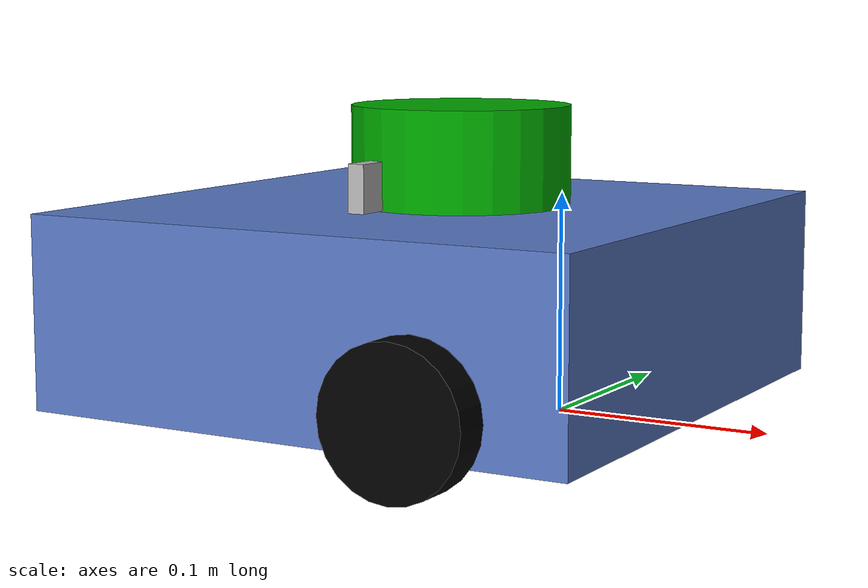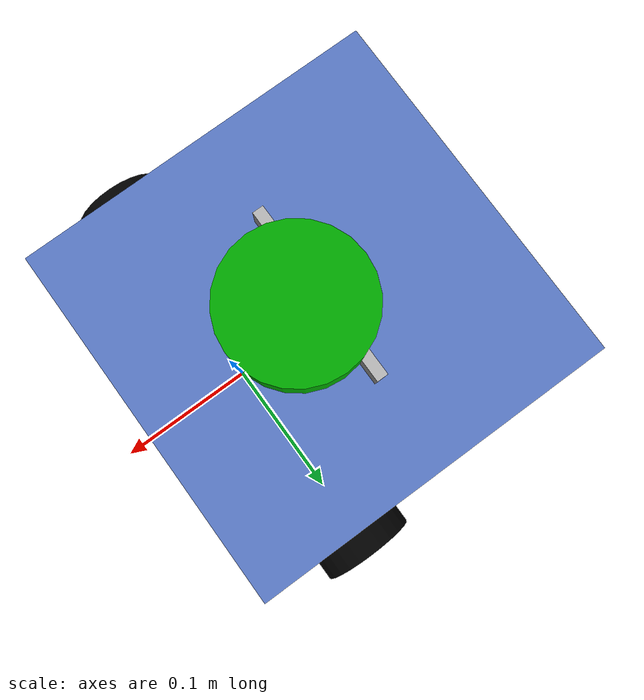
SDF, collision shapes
<?xml version='1.0'?>
<sdf version='1.7'>
  <model name='robot_lidar_plaski'>
    <link name='base'>
      <inertial>
        <pose>-0.064 0 0.048 0 -0 0</pose>
        <inertia>
          <ixx>0.001</ixx>
          <ixy>0</ixy>
          <ixz>0</ixz>
          <iyy>0.001</iyy>
          <iyz>0</iyz>
          <izz>0.001</izz>
        </inertia>
        <mass>1</mass>
      </inertial>
      <self_collide>0</self_collide>
      <enable_wind>0</enable_wind>
      <kinematic>0</kinematic>
      <pose>0 0 0 0 -0 0</pose>
      <gravity>1</gravity>
      <visual name='ModelPreview_8::base::visual_1'>
        <pose>-0.177 0.064 -0.004 0 -0 0</pose>
        <geometry>
          <sphere>
            <radius>0.00499999</radius>
          </sphere>
        </geometry>
        <material>
          <shader type='pixel'>
            <normal_map>__default__</normal_map>
          </shader>
          <script>
            <name>ModelPreview_5::base::base_visual_MATERIAL_</name>
            <uri>__default__</uri>
          </script>
          <ambient>0.353 0.478 0.776 1</ambient>
          <diffuse>0.353 0.478 0.776 1</diffuse>
          <specular>0.353 0.478 0.776 1</specular>
          <emissive>0.353 0.478 0.776 1</emissive>
        </material>
        <transparency>0</transparency>
        <cast_shadows>1</cast_shadows>
      </visual>
      <visual name='base_visual'>
        <pose>-0.064 0 0.048 0 -0 0</pose>
        <geometry>
          <box>
            <size>0.265 0.265 0.089</size>
          </box>
        </geometry>
        <material>
          <shader type='pixel'>
            <normal_map>__default__</normal_map>
          </shader>
          <script>
            <name>ModelPreview_5::base::base_visual_MATERIAL_</name>
            <uri>__default__</uri>
          </script>
          <ambient>0.353 0.478 0.776 1</ambient>
          <diffuse>0.353 0.478 0.776 1</diffuse>
          <specular>0.353 0.478 0.776 1</specular>
          <emissive>0.353 0.478 0.776 1</emissive>
        </material>
        <transparency>0</transparency>
        <cast_shadows>1</cast_shadows>
      </visual>
      <visual name='ModelPreview_8::base::visual_2'>
        <pose>-0.177 -0.064 -0.004 0 -0 0</pose>
        <geometry>
          <sphere>
            <radius>0.00499999</radius>
          </sphere>
        </geometry>
        <material>
          <shader type='pixel'>
            <normal_map>__default__</normal_map>
          </shader>
          <script>
            <name>ModelPreview_5::base::base_visual_MATERIAL_</name>
            <uri>__default__</uri>
          </script>
          <ambient>0.353 0.478 0.776 1</ambient>
          <diffuse>0.353 0.478 0.776 1</diffuse>
          <specular>0.353 0.478 0.776 1</specular>
          <emissive>0.353 0.478 0.776 1</emissive>
        </material>
        <transparency>0</transparency>
        <cast_shadows>1</cast_shadows>
      </visual>
      <collision name='base_collision'>
        <laser_retro>0</laser_retro>
        <max_contacts>10</max_contacts>
        <pose>-0.064 0 0.048 0 -0 0</pose>
        <geometry>
          <box>
            <size>0.265 0.265 0.089</size>
          </box>
        </geometry>
        <surface>
          <friction>
            <ode>
              <mu>1</mu>
              <mu2>1</mu2>
              <fdir1>0 0 0</fdir1>
              <slip1>0</slip1>
              <slip2>0</slip2>
            </ode>
            <torsional>
              <coefficient>1</coefficient>
              <patch_radius>0</patch_radius>
              <surface_radius>0</surface_radius>
              <use_patch_radius>1</use_patch_radius>
              <ode>
                <slip>0</slip>
              </ode>
            </torsional>
          </friction>
          <bounce>
            <restitution_coefficient>0</restitution_coefficient>
            <threshold>1e+06</threshold>
          </bounce>
          <contact>
            <collide_without_contact>0</collide_without_contact>
            <collide_without_contact_bitmask>1</collide_without_contact_bitmask>
            <collide_bitmask>1</collide_bitmask>
            <ode>
              <soft_cfm>0</soft_cfm>
              <soft_erp>0.2</soft_erp>
              <kp>1e+13</kp>
              <kd>1</kd>
              <max_vel>0.01</max_vel>
              <min_depth>0</min_depth>
            </ode>
            <bullet>
              <split_impulse>1</split_impulse>
              <split_impulse_penetration_threshold>-0.01</split_impulse_penetration_threshold>
              <soft_cfm>0</soft_cfm>
              <soft_erp>0.2</soft_erp>
              <kp>1e+13</kp>
              <kd>1</kd>
            </bullet>
          </contact>
        </surface>
      </collision>
      <collision name='right_caster_collision'>
        <laser_retro>0</laser_retro>
        <max_contacts>10</max_contacts>
        <pose>-0.177 -0.064 -0.004 0 -0 0</pose>
        <geometry>
          <sphere>
            <radius>0.005</radius>
          </sphere>
        </geometry>
        <surface>
          <friction>
            <ode>
              <mu>100000</mu>
              <mu2>100000</mu2>
              <fdir1>0 0 0</fdir1>
              <slip1>0</slip1>
              <slip2>0</slip2>
            </ode>
            <torsional>
              <coefficient>1</coefficient>
              <patch_radius>0</patch_radius>
              <surface_radius>0</surface_radius>
              <use_patch_radius>1</use_patch_radius>
              <ode>
                <slip>0</slip>
              </ode>
            </torsional>
          </friction>
          <bounce>
            <restitution_coefficient>0</restitution_coefficient>
            <threshold>1e+06</threshold>
          </bounce>
          <contact>
            <collide_without_contact>0</collide_without_contact>
            <collide_without_contact_bitmask>1</collide_without_contact_bitmask>
            <collide_bitmask>1</collide_bitmask>
            <ode>
              <soft_cfm>0</soft_cfm>
              <soft_erp>0.2</soft_erp>
              <kp>1e+13</kp>
              <kd>1</kd>
              <max_vel>0.01</max_vel>
              <min_depth>0</min_depth>
            </ode>
            <bullet>
              <split_impulse>1</split_impulse>
              <split_impulse_penetration_threshold>-0.01</split_impulse_penetration_threshold>
              <soft_cfm>0</soft_cfm>
              <soft_erp>0.2</soft_erp>
              <kp>1e+13</kp>
              <kd>1</kd>
            </bullet>
          </contact>
        </surface>
      </collision>
      <collision name='left_caster_collision'>
        <laser_retro>0</laser_retro>
        <max_contacts>10</max_contacts>
        <pose>-0.177 0.064 -0.004 0 -0 0</pose>
        <geometry>
          <sphere>
            <radius>0.005</radius>
          </sphere>
        </geometry>
        <surface>
          <friction>
            <ode>
              <mu>100000</mu>
              <mu2>100000</mu2>
              <fdir1>0 0 0</fdir1>
              <slip1>0</slip1>
              <slip2>0</slip2>
            </ode>
            <torsional>
              <coefficient>1</coefficient>
              <patch_radius>0</patch_radius>
              <surface_radius>0</surface_radius>
              <use_patch_radius>1</use_patch_radius>
              <ode>
                <slip>0</slip>
              </ode>
            </torsional>
          </friction>
          <bounce>
            <restitution_coefficient>0</restitution_coefficient>
            <threshold>1e+06</threshold>
          </bounce>
          <contact>
            <collide_without_contact>0</collide_without_contact>
            <collide_without_contact_bitmask>1</collide_without_contact_bitmask>
            <collide_bitmask>1</collide_bitmask>
            <ode>
              <soft_cfm>0</soft_cfm>
              <soft_erp>0.2</soft_erp>
              <kp>1e+13</kp>
              <kd>1</kd>
              <max_vel>0.01</max_vel>
              <min_depth>0</min_depth>
            </ode>
            <bullet>
              <split_impulse>1</split_impulse>
              <split_impulse_penetration_threshold>-0.01</split_impulse_penetration_threshold>
              <soft_cfm>0</soft_cfm>
              <soft_erp>0.2</soft_erp>
              <kp>1e+13</kp>
              <kd>1</kd>
            </bullet>
          </contact>
        </surface>
      </collision>
    </link>
    <link name='image'>
      <inertial>
        <pose>-0.069 0 0.104 0 -0 0</pose>
        <inertia>
          <ixx>0.001</ixx>
          <ixy>0</ixy>
          <ixz>0</ixz>
          <iyy>0.001</iyy>
          <iyz>0</iyz>
          <izz>0.001</izz>
        </inertia>
        <mass>0.035</mass>
      </inertial>
      <sensor name='raspberry_pi_cam' type='camera'>
        <pose>0.076 0 0.094 0 -0 0</pose>
        <always_on>1</always_on>
        <visualize>0</visualize>
        <update_rate>30</update_rate>
        <camera>
          <horizontal_fov>1.0856</horizontal_fov>
          <image>
            <width>640</width>
            <height>480</height>
            <format>R8G8B8</format>
          </image>
          <depth_camera>
            <output>depths</output>
          </depth_camera>
          <clip>
            <near>0.02</near>
            <far>300</far>
          </clip>
        </camera>
      </sensor>
      <self_collide>0</self_collide>
      <enable_wind>0</enable_wind>
      <kinematic>0</kinematic>
      <pose>0 0 0 0 -0 0</pose>
      <collision name='image_collision'>
        <laser_retro>0</laser_retro>
        <max_contacts>10</max_contacts>
        <pose>-0.069 0 0.104 0 -0 0</pose>
        <geometry>
          <box>
            <size>0.008 0.13 0.022</size>
          </box>
        </geometry>
        <surface>
          <friction>
            <ode>
              <mu>1</mu>
              <mu2>1</mu2>
              <fdir1>0 0 0</fdir1>
              <slip1>0</slip1>
              <slip2>0</slip2>
            </ode>
            <torsional>
              <coefficient>1</coefficient>
              <patch_radius>0</patch_radius>
              <surface_radius>0</surface_radius>
              <use_patch_radius>1</use_patch_radius>
              <ode>
                <slip>0</slip>
              </ode>
            </torsional>
          </friction>
          <bounce>
            <restitution_coefficient>0</restitution_coefficient>
            <threshold>1e+06</threshold>
          </bounce>
          <contact>
            <collide_without_contact>0</collide_without_contact>
            <collide_without_contact_bitmask>1</collide_without_contact_bitmask>
            <collide_bitmask>1</collide_bitmask>
            <ode>
              <soft_cfm>0</soft_cfm>
              <soft_erp>0.2</soft_erp>
              <kp>1e+13</kp>
              <kd>1</kd>
              <max_vel>0.01</max_vel>
              <min_depth>0</min_depth>
            </ode>
            <bullet>
              <split_impulse>1</split_impulse>
              <split_impulse_penetration_threshold>-0.01</split_impulse_penetration_threshold>
              <soft_cfm>0</soft_cfm>
              <soft_erp>0.2</soft_erp>
              <kp>1e+13</kp>
              <kd>1</kd>
            </bullet>
          </contact>
        </surface>
      </collision>
    </link>
    <link name='left_wheel'>
      <inertial>
        <pose>0 0.144 0.023 -1.57 0 0</pose>
        <inertia>
          <ixx>0.001</ixx>
          <ixy>0</ixy>
          <ixz>0</ixz>
          <iyy>0.001</iyy>
          <iyz>0</iyz>
          <izz>0.001</izz>
        </inertia>
        <mass>0.1</mass>
      </inertial>
      <self_collide>0</self_collide>
      <enable_wind>0</enable_wind>
      <kinematic>0</kinematic>
      <pose>0 0 0 0 -0 0</pose>
      <gravity>1</gravity>
      <visual name='left_wheel_visual'>
        <pose>0 0.144 0.023 0 -0 0</pose>
        <geometry>
          <mesh>
            <uri>../opony/left_tire.dae</uri>
            <scale>0.001 0.001 0.001</scale>
          </mesh>
        </geometry>
        <material>
          <shader type='pixel'>
            <normal_map>__default__</normal_map>
          </shader>
          <script>
            <name>ModelPreview_1::left_wheel::left_wheel_visual_MATERIAL_ModelPreview_1::left_wheel::left_wheel_visual_MATERIAL_ModelPreview_1::left_wheel::left_wheel_visual_MATERIAL_ModelPreview_7::left_wheel::left_wheel_visual_MATERIAL_ModelPreview_5::left_wheel::left_wheel_visual_MATERIAL_</name>
            <uri>__default__</uri>
          </script>
          <ambient>0 0 0 1</ambient>
          <diffuse>0 0 0 1</diffuse>
          <specular>0 0 0 1</specular>
          <emissive>0 0 0 1</emissive>
        </material>
        <transparency>0</transparency>
        <cast_shadows>1</cast_shadows>
      </visual>
      <collision name='left_wheel_collision'>
        <laser_retro>0</laser_retro>
        <max_contacts>10</max_contacts>
        <pose>0 0.144 0.023 -1.57 0 0</pose>
        <geometry>
          <cylinder>
            <radius>0.033</radius>
            <length>0.018</length>
          </cylinder>
        </geometry>
        <surface>
          <friction>
            <ode>
              <mu>100000</mu>
              <mu2>100000</mu2>
              <fdir1>0 0 0</fdir1>
              <slip1>0</slip1>
              <slip2>0</slip2>
            </ode>
            <torsional>
              <coefficient>1</coefficient>
              <patch_radius>0</patch_radius>
              <surface_radius>0</surface_radius>
              <use_patch_radius>1</use_patch_radius>
              <ode>
                <slip>0</slip>
              </ode>
            </torsional>
          </friction>
          <bounce>
            <restitution_coefficient>0</restitution_coefficient>
            <threshold>1e+06</threshold>
          </bounce>
          <contact>
            <collide_without_contact>0</collide_without_contact>
            <collide_without_contact_bitmask>1</collide_without_contact_bitmask>
            <collide_bitmask>1</collide_bitmask>
            <ode>
              <soft_cfm>0</soft_cfm>
              <soft_erp>0.2</soft_erp>
              <kp>1e+13</kp>
              <kd>1</kd>
              <max_vel>0.01</max_vel>
              <min_depth>0</min_depth>
            </ode>
            <bullet>
              <split_impulse>1</split_impulse>
              <split_impulse_penetration_threshold>-0.01</split_impulse_penetration_threshold>
              <soft_cfm>0</soft_cfm>
              <soft_erp>0.2</soft_erp>
              <kp>1e+13</kp>
              <kd>1</kd>
            </bullet>
          </contact>
        </surface>
      </collision>
    </link>
    <link name='lidar'>
      <inertial>
        <pose>-0.052 0 0.111 0 -0 0</pose>
        <inertia>
          <ixx>0.001</ixx>
          <ixy>0</ixy>
          <ixz>0</ixz>
          <iyy>0.001</iyy>
          <iyz>0</iyz>
          <izz>0.001</izz>
        </inertia>
        <mass>0.125</mass>
      </inertial>
      <sensor name='hls_lfcd_lds' type='ray'>
        <always_on>1</always_on>
        <visualize>0</visualize>
        <pose>-0.064 0 0.121 0 -0 0</pose>
        <update_rate>1800</update_rate>
        <ray>
          <scan>
            <horizontal>
              <samples>360</samples>
              <resolution>1</resolution>
              <min_angle>0</min_angle>
              <max_angle>6.28</max_angle>
            </horizontal>
            <vertical>
              <samples>1</samples>
              <min_angle>0</min_angle>
              <max_angle>0</max_angle>
            </vertical>
          </scan>
          <range>
            <min>0.12</min>
            <max>3.5</max>
            <resolution>0.015</resolution>
          </range>
          <noise>
            <type>gaussian</type>
            <mean>0</mean>
            <stddev>0.01</stddev>
          </noise>
        </ray>
      </sensor>
      <self_collide>0</self_collide>
      <enable_wind>0</enable_wind>
      <kinematic>0</kinematic>
      <pose>0 0 0 0 -0 0</pose>
      <gravity>1</gravity>
      <visual name='lidar_sensor_visual'>
        <pose>-0.052 0 0.111 0 -0 0</pose>
        <geometry>
          <cylinder>
            <radius>0.0508</radius>
            <length>0.055</length>
          </cylinder>
        </geometry>
        <material>
          <shader type='pixel'>
            <normal_map>__default__</normal_map>
          </shader>
          <script>
            <name>ModelPreview_5::lidar::lidar_sensor_visual_MATERIAL_</name>
            <uri>__default__</uri>
          </script>
          <ambient>0 0.667 0 1</ambient>
          <diffuse>0 0.667 0 1</diffuse>
          <specular>0.078 0.529 0.318 1</specular>
          <emissive>0 1 0.498 1</emissive>
        </material>
        <transparency>0</transparency>
        <cast_shadows>1</cast_shadows>
      </visual>
      <collision name='lidar_sensor_collision'>
        <laser_retro>0</laser_retro>
        <max_contacts>10</max_contacts>
        <pose>-0.052 0 0.111 0 -0 0</pose>
        <geometry>
          <cylinder>
            <radius>0.0508</radius>
            <length>0.055</length>
          </cylinder>
        </geometry>
        <surface>
          <friction>
            <ode>
              <mu>1</mu>
              <mu2>1</mu2>
              <fdir1>0 0 0</fdir1>
              <slip1>0</slip1>
              <slip2>0</slip2>
            </ode>
            <torsional>
              <coefficient>1</coefficient>
              <patch_radius>0</patch_radius>
              <surface_radius>0</surface_radius>
              <use_patch_radius>1</use_patch_radius>
              <ode>
                <slip>0</slip>
              </ode>
            </torsional>
          </friction>
          <bounce>
            <restitution_coefficient>0</restitution_coefficient>
            <threshold>1e+06</threshold>
          </bounce>
          <contact>
            <collide_without_contact>0</collide_without_contact>
            <collide_without_contact_bitmask>1</collide_without_contact_bitmask>
            <collide_bitmask>1</collide_bitmask>
            <ode>
              <soft_cfm>0</soft_cfm>
              <soft_erp>0.2</soft_erp>
              <kp>1e+13</kp>
              <kd>1</kd>
              <max_vel>0.01</max_vel>
              <min_depth>0</min_depth>
            </ode>
            <bullet>
              <split_impulse>1</split_impulse>
              <split_impulse_penetration_threshold>-0.01</split_impulse_penetration_threshold>
              <soft_cfm>0</soft_cfm>
              <soft_erp>0.2</soft_erp>
              <kp>1e+13</kp>
              <kd>1</kd>
            </bullet>
          </contact>
        </surface>
      </collision>
    </link>
    <link name='right_wheel'>
      <inertial>
        <pose>0 -0.144 0.023 -1.57 0 0</pose>
        <inertia>
          <ixx>0.001</ixx>
          <ixy>0</ixy>
          <ixz>0</ixz>
          <iyy>0.001</iyy>
          <iyz>0</iyz>
          <izz>0.001</izz>
        </inertia>
        <mass>0.1</mass>
      </inertial>
      <self_collide>0</self_collide>
      <enable_wind>0</enable_wind>
      <kinematic>0</kinematic>
      <pose>0 0 0 0 -0 0</pose>
      <gravity>1</gravity>
      <visual name='right_wheel_visual'>
        <pose>0 -0.144 0.023 0 -0 0</pose>
        <geometry>
          <mesh>
            <uri>../opony/right_tire.dae</uri>
            <scale>0.001 0.001 0.001</scale>
          </mesh>
        </geometry>
        <material>
          <shader type='pixel'>
            <normal_map>__default__</normal_map>
          </shader>
          <script>
            <name>ModelPreview_1::right_wheel::right_wheel_visual_MATERIAL_ModelPreview_1::right_wheel::right_wheel_visual_MATERIAL_ModelPreview_1::right_wheel::right_wheel_visual_MATERIAL_ModelPreview_7::right_wheel::right_wheel_visual_MATERIAL_ModelPreview_5::right_wheel::right_wheel_visual_MATERIAL_</name>
            <uri>__default__</uri>
          </script>
          <ambient>0 0 0 1</ambient>
          <diffuse>0 0 0 1</diffuse>
          <specular>0 0 0 1</specular>
          <emissive>0 0 0 1</emissive>
        </material>
        <transparency>0</transparency>
        <cast_shadows>1</cast_shadows>
      </visual>
      <collision name='right_wheel_collision'>
        <laser_retro>0</laser_retro>
        <max_contacts>10</max_contacts>
        <pose>0 -0.144 0.023 -1.57 0 0</pose>
        <geometry>
          <cylinder>
            <radius>0.033</radius>
            <length>0.018</length>
          </cylinder>
        </geometry>
        <surface>
          <friction>
            <ode>
              <mu>100000</mu>
              <mu2>100000</mu2>
              <fdir1>0 0 0</fdir1>
              <slip1>0</slip1>
              <slip2>0</slip2>
            </ode>
            <torsional>
              <coefficient>1</coefficient>
              <patch_radius>0</patch_radius>
              <surface_radius>0</surface_radius>
              <use_patch_radius>1</use_patch_radius>
              <ode>
                <slip>0</slip>
              </ode>
            </torsional>
          </friction>
          <bounce>
            <restitution_coefficient>0</restitution_coefficient>
            <threshold>1e+06</threshold>
          </bounce>
          <contact>
            <collide_without_contact>0</collide_without_contact>
            <collide_without_contact_bitmask>1</collide_without_contact_bitmask>
            <collide_bitmask>1</collide_bitmask>
            <ode>
              <soft_cfm>0</soft_cfm>
              <soft_erp>0.2</soft_erp>
              <kp>1e+13</kp>
              <kd>1</kd>
              <max_vel>0.01</max_vel>
              <min_depth>0</min_depth>
            </ode>
            <bullet>
              <split_impulse>1</split_impulse>
              <split_impulse_penetration_threshold>-0.01</split_impulse_penetration_threshold>
              <soft_cfm>0</soft_cfm>
              <soft_erp>0.2</soft_erp>
              <kp>1e+13</kp>
              <kd>1</kd>
            </bullet>
          </contact>
        </surface>
      </collision>
    </link>
    <joint name='image_joint' type='fixed'>
      <parent>base</parent>
      <child>image</child>
      <pose>0.064 -0.065 0.094 0 -0 0</pose>
      <physics>
        <ode>
          <limit>
            <cfm>0</cfm>
            <erp>0.2</erp>
          </limit>
          <suspension>
            <cfm>0</cfm>
            <erp>0.2</erp>
          </suspension>
        </ode>
      </physics>
    </joint>
    <joint name='left_wheel_joint' type='revolute'>
      <parent>base</parent>
      <child>left_wheel</child>
      <pose>0 0.144 0.023 -1.57 0 0</pose>
      <axis>
        <xyz>0 1 0</xyz>
        <limit>
          <lower>-1e+16</lower>
          <upper>1e+16</upper>
          <effort>-1</effort>
          <velocity>-1</velocity>
        </limit>
        <dynamics>
          <spring_reference>0</spring_reference>
          <spring_stiffness>0</spring_stiffness>
          <damping>0</damping>
          <friction>0</friction>
        </dynamics>
      </axis>
      <physics>
        <ode>
          <limit>
            <cfm>0</cfm>
            <erp>0.2</erp>
          </limit>
          <suspension>
            <cfm>0</cfm>
            <erp>0.2</erp>
          </suspension>
        </ode>
      </physics>
    </joint>
    <joint name='lidar_joint' type='fixed'>
      <parent>base</parent>
      <child>lidar</child>
      <pose>-0.064 0 0.121 0 -0 0</pose>
      <physics>
        <ode>
          <limit>
            <cfm>0</cfm>
            <erp>0.2</erp>
          </limit>
          <suspension>
            <cfm>0</cfm>
            <erp>0.2</erp>
          </suspension>
        </ode>
      </physics>
    </joint>
    <joint name='right_wheel_joint' type='revolute'>
      <parent>base</parent>
      <child>right_wheel</child>
      <pose>0 -0.144 0.023 -1.57 0 0</pose>
      <axis>
        <xyz>0 1 0</xyz>
        <limit>
          <lower>-1e+16</lower>
          <upper>1e+16</upper>
          <effort>-1</effort>
          <velocity>-1</velocity>
        </limit>
        <dynamics>
          <spring_reference>0</spring_reference>
          <spring_stiffness>0</spring_stiffness>
          <damping>0</damping>
          <friction>0</friction>
        </dynamics>
      </axis>
      <physics>
        <ode>
          <limit>
            <cfm>0</cfm>
            <erp>0.2</erp>
          </limit>
          <suspension>
            <cfm>0</cfm>
            <erp>0.2</erp>
          </suspension>
        </ode>
      </physics>
    </joint>
    <static>0</static>
    <allow_auto_disable>1</allow_auto_disable>
  </model>
</sdf>
